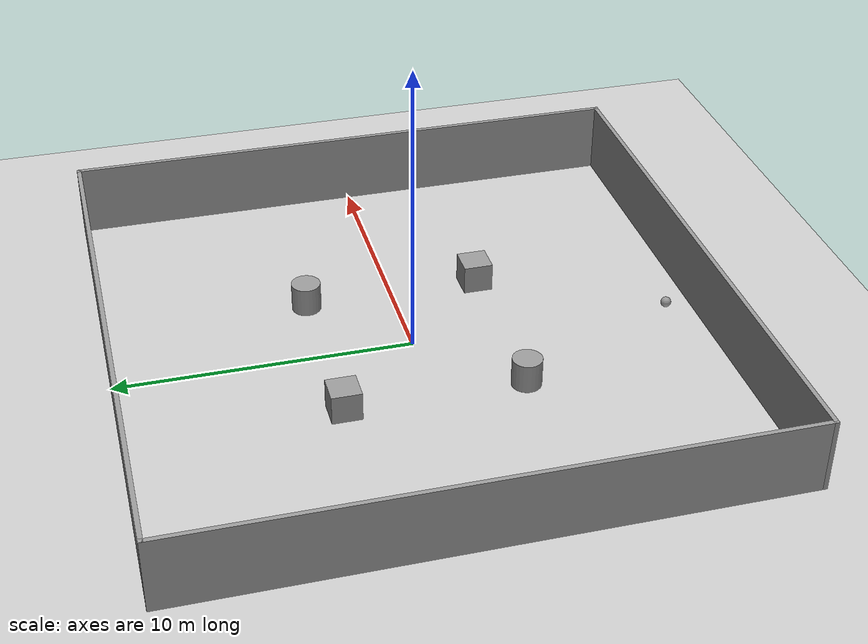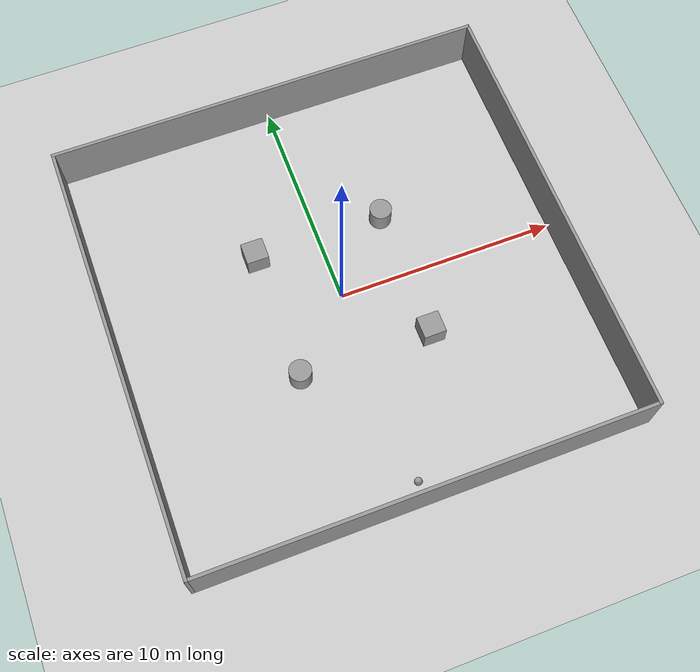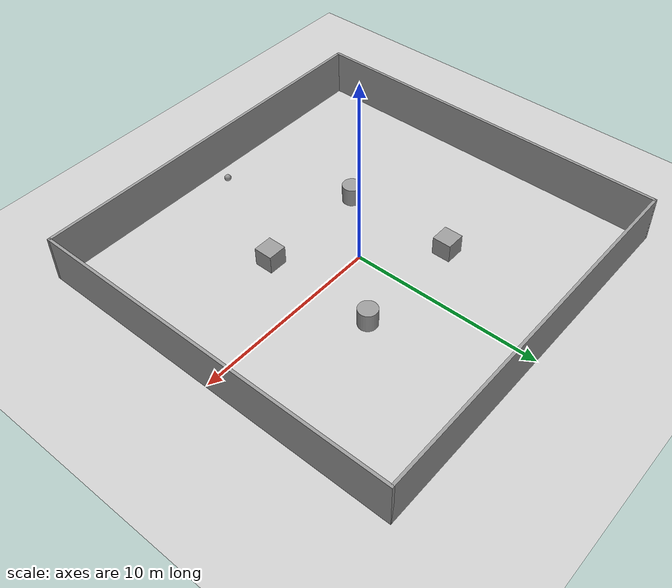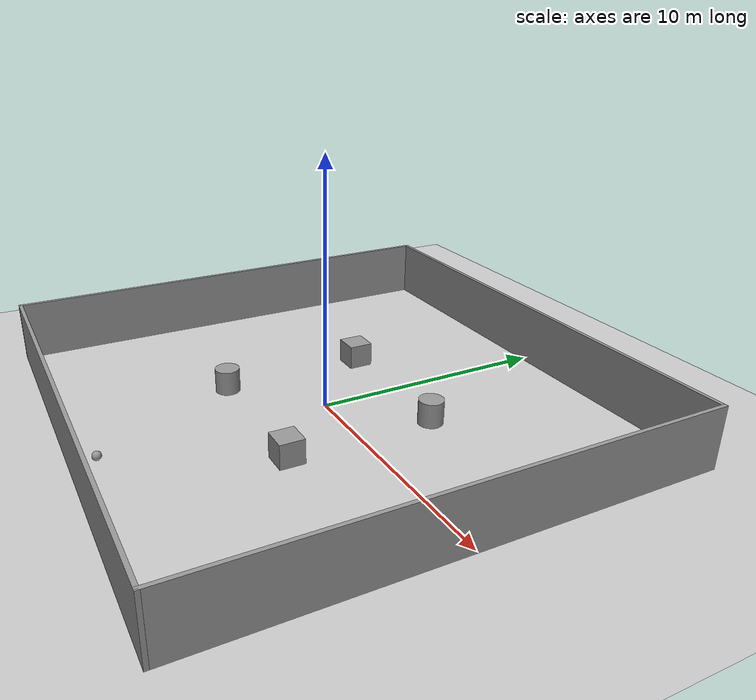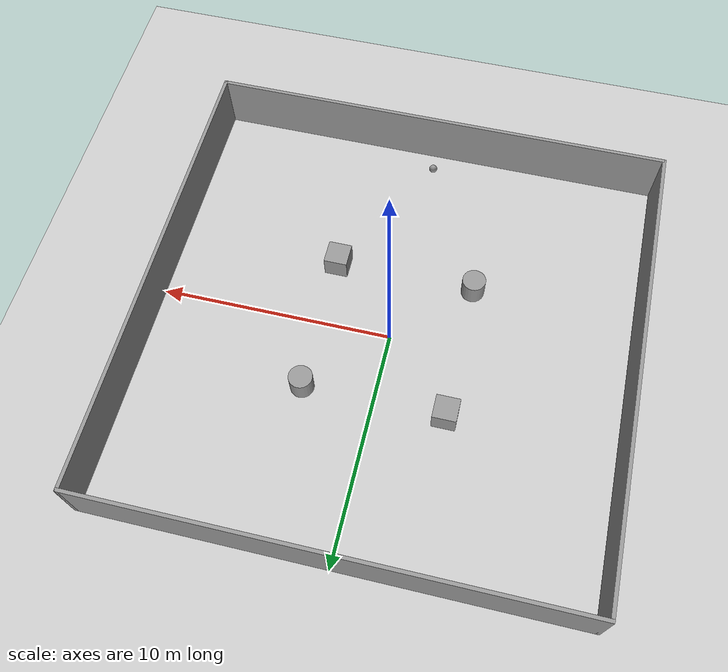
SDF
<sdf version="1.7">
 <world name="default">
  <light name="sun" type="directional">
   <pose>0 0 10 0 -0 0</pose>
   <diffuse>0.8 0.8 0.8 1</diffuse>
   <specular>0.2 0.2 0.2 1</specular>
   <attenuation>
    <range>1000</range>
    <constant>0.9</constant>
    <linear>0.01</linear>
    <quadratic>0.001</quadratic>
   </attenuation>
   <direction>-0.5 0.1 -0.9</direction>
   <spot><inner_angle>0</inner_angle><outer_angle>0</outer_angle><falloff>0</falloff></spot>
  </light>
  <model name="ground_plane">
   <static>1</static>
   <link name="link">
    <collision name="collision">
     <geometry><plane><normal>0 0 1</normal><size>100 100</size></plane></geometry>
     <surface>
      <contact><collide_bitmask>65535</collide_bitmask></contact>
      <friction><ode><mu>100</mu><mu2>50</mu2></ode></friction>
     </surface>
    </collision>
    <visual name="visual">
     <cast_shadows>0</cast_shadows>
     <geometry><plane><normal>0 0 1</normal><size>100 100</size></plane></geometry>
     <material>
      <script><uri>file://media/materials/scripts/gazebo.material</uri><name>Gazebo/Grey</name></script>
     </material>
    </visual>
   </link>
  </model>
  <gravity>0 0 -9.8</gravity>
  <magnetic_field>6e-06 2.3e-05 -4.2e-05</magnetic_field>
  <atmosphere type="adiabatic"/>
  <physics type="ode">
   <max_step_size>0.001</max_step_size>
   <real_time_factor>1</real_time_factor>
   <real_time_update_rate>1000</real_time_update_rate>
  </physics>
  <scene><ambient>0.4 0.4 0.4 1</ambient><background>0.7 0.7 0.7 1</background><shadows>1</shadows></scene>
  <spherical_coordinates>
   <surface_model>EARTH_WGS84</surface_model>
   <latitude_deg>0</latitude_deg>
   <longitude_deg>0</longitude_deg>
   <elevation>0</elevation>
   <heading_deg>0</heading_deg>
  </spherical_coordinates>
  <model name="Untitled">
   <pose>0.010594 -0.011741 0 0 -0 0</pose>
   <link name="Wall_5">
    <collision name="Wall_5_Collision">
     <geometry><box><size>20.25 0.15 2.5</size></box></geometry>
     <pose>0 0 1.25 0 -0 0</pose>
    </collision>
    <visual name="Wall_5_Visual">
     <pose>0 0 1.25 0 -0 0</pose>
     <geometry><box><size>20.25 0.15 2.5</size></box></geometry>
     <material>
      <script><uri>file://media/materials/scripts/gazebo.material</uri><name>Gazebo/Grey</name></script>
      <ambient>1 1 1 1</ambient>
     </material>
     <meta><layer>0</layer></meta>
    </visual>
    <pose>-0 9.925 0 0 -0 0</pose>
   </link>
   <link name="Wall_6">
    <collision name="Wall_6_Collision">
     <geometry><box><size>20 0.15 2.5</size></box></geometry>
     <pose>0 0 1.25 0 -0 0</pose>
    </collision>
    <visual name="Wall_6_Visual">
     <pose>0 0 1.25 0 -0 0</pose>
     <geometry><box><size>20 0.15 2.5</size></box></geometry>
     <material>
      <script><uri>file://media/materials/scripts/gazebo.material</uri><name>Gazebo/Grey</name></script>
      <ambient>1 1 1 1</ambient>
     </material>
     <meta><layer>0</layer></meta>
    </visual>
    <pose>10.05 0 0 0 -0 -1.5708</pose>
   </link>
   <link name="Wall_7">
    <collision name="Wall_7_Collision">
     <geometry><box><size>20.25 0.15 2.5</size></box></geometry>
     <pose>0 0 1.25 0 -0 0</pose>
    </collision>
    <visual name="Wall_7_Visual">
     <pose>0 0 1.25 0 -0 0</pose>
     <geometry><box><size>20.25 0.15 2.5</size></box></geometry>
     <material>
      <script><uri>file://media/materials/scripts/gazebo.material</uri><name>Gazebo/Grey</name></script>
      <ambient>1 1 1 1</ambient>
     </material>
     <meta><layer>0</layer></meta>
    </visual>
    <pose>-0 -9.925 0 0 -0 3.14159</pose>
   </link>
   <link name="Wall_8">
    <collision name="Wall_8_Collision">
     <geometry><box><size>20 0.15 2.5</size></box></geometry>
     <pose>0 0 1.25 0 -0 0</pose>
    </collision>
    <visual name="Wall_8_Visual">
     <pose>0 0 1.25 0 -0 0</pose>
     <geometry><box><size>20 0.15 2.5</size></box></geometry>
     <material>
      <script><uri>file://media/materials/scripts/gazebo.material</uri><name>Gazebo/Grey</name></script>
      <ambient>1 1 1 1</ambient>
     </material>
     <meta><layer>0</layer></meta>
    </visual>
    <pose>-10.05 0 0 0 -0 1.5708</pose>
   </link>
   <static>1</static>
  </model>
  <model name="unit_box">
   <pose>-3 3 0.499995 0 -1e-05 0</pose>
   <link name="link">
    <inertial>
     <mass>1</mass>
     <inertia>
      <ixx>0.166667</ixx>
      <ixy>0</ixy>
      <ixz>0</ixz>
      <iyy>0.166667</iyy>
      <iyz>0</iyz>
      <izz>0.166667</izz>
     </inertia>
    </inertial>
    <collision name="collision"><geometry><box><size>1 1 1</size></box></geometry></collision>
    <visual name="visual">
     <geometry><box><size>1 1 1</size></box></geometry>
     <material>
      <script><name>Gazebo/Grey</name><uri>file://media/materials/scripts/gazebo.material</uri></script>
     </material>
    </visual>
   </link>
  </model>
  <model name="unit_cylinder">
   <pose>3 3 0.499991 -0 -0 -0</pose>
   <link name="link">
    <inertial>
     <mass>1</mass>
     <inertia><ixx>0.145833</ixx><ixy>0</ixy><ixz>0</ixz><iyy>0.145833</iyy><iyz>0</iyz><izz>0.125</izz></inertia>
    </inertial>
    <collision name="collision">
     <geometry><cylinder><radius>0.5</radius><length>1</length></cylinder></geometry>
    </collision>
    <visual name="visual">
     <geometry><cylinder><radius>0.5</radius><length>1</length></cylinder></geometry>
     <material>
      <script><name>Gazebo/Grey</name><uri>file://media/materials/scripts/gazebo.material</uri></script>
     </material>
    </visual>
   </link>
  </model>
  <model name="unit_cylinder_0">
   <pose>-3 -3 0.499994 -4e-06 -3e-06 -0</pose>
   <link name="link">
    <inertial>
     <mass>1</mass>
     <inertia><ixx>0.145833</ixx><ixy>0</ixy><ixz>0</ixz><iyy>0.145833</iyy><iyz>0</iyz><izz>0.125</izz></inertia>
    </inertial>
    <collision name="collision">
     <geometry><cylinder><radius>0.5</radius><length>1</length></cylinder></geometry>
    </collision>
    <visual name="visual">
     <geometry><cylinder><radius>0.5</radius><length>1</length></cylinder></geometry>
     <material>
      <script><name>Gazebo/Grey</name><uri>file://media/materials/scripts/gazebo.material</uri></script>
     </material>
    </visual>
   </link>
  </model>
  <model name="unit_box_0">
   <pose>3 -3 0.499995 -1e-05 -0 -0</pose>
   <link name="link">
    <inertial>
     <mass>1</mass>
     <inertia>
      <ixx>0.166667</ixx>
      <ixy>0</ixy>
      <ixz>0</ixz>
      <iyy>0.166667</iyy>
      <iyz>0</iyz>
      <izz>0.166667</izz>
     </inertia>
    </inertial>
    <collision name="collision"><geometry><box><size>1 1 1</size></box></geometry></collision>
    <visual name="visual">
     <geometry><box><size>1 1 1</size></box></geometry>
     <material>
      <script><name>Gazebo/Grey</name><uri>file://media/materials/scripts/gazebo.material</uri></script>
     </material>
    </visual>
   </link>
  </model>
  <model name="unit_sphere">
   <pose>0 -9 0.178274 0 -0 0</pose>
   <link name="link">
    <inertial>
     <mass>1</mass>
     <inertia><ixx>0.1</ixx><ixy>0</ixy><ixz>0</ixz><iyy>0.1</iyy><iyz>0</iyz><izz>0.1</izz></inertia>
    </inertial>
    <collision name="collision"><geometry><sphere><radius>0.178274</radius></sphere></geometry></collision>
    <visual name="visual">
     <geometry><sphere><radius>0.178274</radius></sphere></geometry>
     <material>
      <script><name>Gazebo/Grey</name><uri>file://media/materials/scripts/gazebo.material</uri></script>
     </material>
    </visual>
   </link>
  </model>
 </world>
</sdf>
